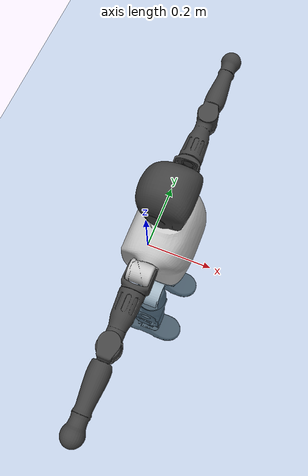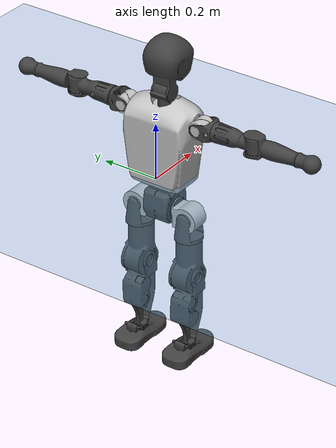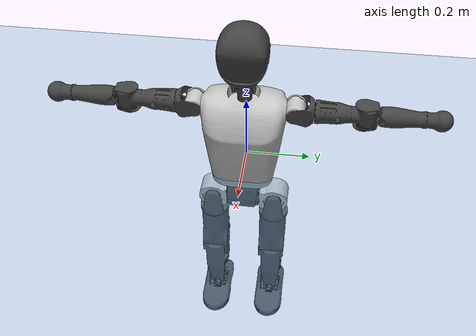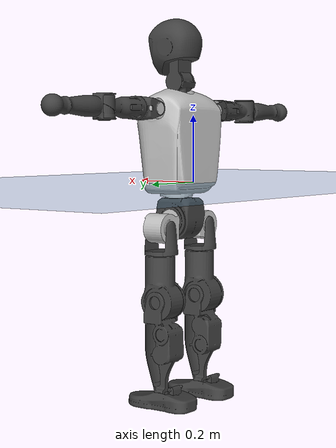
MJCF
<mujoco model="T1">
  <compiler angle="radian" assetdir="assets" balanceinertia="true" inertiafromgeom="false"/>

  <option timestep="0.005" density="1.2" viscosity="2e-05"/>

  <size nkey="1"/>

  <visual>
    <quality shadowsize="8192"/>
    <map shadowclip="0.5"/>
  </visual>

  <default>
    <default class="/">
      <joint armature="0.01" damping="0.01" frictionloss="0.1"/>
      <geom contype="0" conaffinity="0" group="1" solref="-1000 -80"/>
      <site size="0.01 0.005 0.005" group="5"/>
      <general forcelimited="true" biastype="affine" gainprm="25" biasprm="0 -25 -0.6"/>
      <default class="t1">
        <geom rgba="0.25 0.25 0.25 1"/>
        <default class="visual">
          <geom type="mesh" group="2"/>
        </default>
        <default class="collision">
          <geom group="3"/>
        </default>
        <default class="foot">
          <geom size="0.1115 0.05 0.015" type="box" condim="6" group="4" priority="1" solimp="0.015 1 0.015"/>
        </default>
        <default class="reward_collision_sphere">
          <geom group="5" rgba="1 0 0 1"/>
        </default>
      </default>
    </default>
  </default>

  <asset>
    <texture type="skybox" colorspace="auto" name="//unnamed_texture_0" builtin="gradient" rgb1="0.95 0.95 0.95" rgb2="0.95 0.95 0.95" width="100" height="600"/>
    <texture type="2d" colorspace="auto" name="texplane" builtin="checker" rgb1="0.345 0.575 0.748" rgb2="0.345 0.575 0.748" markrgb="1 1 1" width="512" height="512"/>
    <material name="MatPlane" class="/" texture="texplane" texuniform="true" texrepeat="2 2" specular="0.9"/>
    <mesh name="Trunk" class="/" file="Trunk.stl"/>
    <mesh name="H1" class="/" file="H1.stl"/>
    <mesh name="H2" class="/" file="H2.stl"/>
    <mesh name="AL1" class="/" file="AL1.stl"/>
    <mesh name="AL2" class="/" file="AL2.stl"/>
    <mesh name="AL3" class="/" file="AL3.stl"/>
    <mesh name="left_hand_link" class="/" file="left_hand_link.stl"/>
    <mesh name="AR1" class="/" file="AR1.stl"/>
    <mesh name="AR2" class="/" file="AR2.stl"/>
    <mesh name="AR3" class="/" file="AR3.stl"/>
    <mesh name="right_hand_link" class="/" file="right_hand_link.stl"/>
    <mesh name="Waist" class="/" file="Waist.stl"/>
    <mesh name="Hip_Pitch_Left" class="/" file="Hip_Pitch_Left.stl"/>
    <mesh name="Hip_Roll_Left" class="/" file="Hip_Roll_Left.stl"/>
    <mesh name="Hip_Yaw_Left" class="/" file="Hip_Yaw_Left.stl"/>
    <mesh name="Shank_Left" class="/" file="Shank_Left.stl"/>
    <mesh name="Ankle_Cross_Left" class="/" file="Ankle_Cross_Left.stl"/>
    <mesh name="left_foot_link" class="/" file="left_foot_link.stl"/>
    <mesh name="Hip_Pitch_Right" class="/" file="Hip_Pitch_Right.stl"/>
    <mesh name="Hip_Roll_Right" class="/" file="Hip_Roll_Right.stl"/>
    <mesh name="Hip_Yaw_Right" class="/" file="Hip_Yaw_Right.stl"/>
    <mesh name="Shank_Right" class="/" file="Shank_Right.stl"/>
    <mesh name="Ankle_Cross_Right" class="/" file="Ankle_Cross_Right.stl"/>
    <mesh name="right_foot_link" class="/" file="right_foot_link.stl"/>
  </asset>

  <worldbody>
    <geom name="floor" class="/" size="100 100 0.125" type="plane" group="0" material="MatPlane"/>
    <light name="toplight_shadow" class="/" pos="0 0 5" dir="0.0990148 0.0990148 -0.990148" type="directional" ambient="0.04 0.04 0.04" diffuse="0.55 0.55 0.55" specular="0.12 0.12 0.12"/>
    <light name="toplight_fill" class="/" pos="0 0 5" dir="0.0990148 0.0990148 -0.990148" type="directional" castshadow="false" ambient="0.04 0.04 0.04" diffuse="0.3 0.3 0.3" specular="0.08 0.08 0.08"/>
    <body name="trunk" childclass="t1" pos="-1.51298e-05 0.000432464 -0.000226728" quat="1 -8.76079e-06 1.7324e-05 -1.82914e-05">
      <inertial pos="0.0427071 -0.000308437 0.104579" quat="0.999927 0.00132592 -0.0116762 0.00296687" mass="8.87987" diaginertia="0.0286888 0.0582137 0.0541163"/>
      <joint name="//unnamed_joint_0" type="free" armature="0" damping="0" frictionloss="0"/>
      <geom name="//unnamed_geom_1" class="visual" rgba="0.76 0.76 0.76 1" mesh="Trunk"/>
      <geom name="//unnamed_geom_2" class="collision" size="0.0682032 0.0909376 0.136406" pos="0.0475556 0 0.119231" type="box"/>
      <geom name="//unnamed_geom_3" class="reward_collision_sphere" size="0.104578" pos="0.0475556 0 0.0993591"/>
      <geom name="//unnamed_geom_4" class="reward_collision_sphere" size="0.0136406" pos="0.0475556 0.0800653 0"/>
      <geom name="//unnamed_geom_5" class="reward_collision_sphere" size="0.0136406" pos="0.0475556 -0.0800653 0"/>
      <geom name="//unnamed_geom_6" class="reward_collision_sphere" size="0.0136406" pos="0.0475556 0.100788 0.178846"/>
      <geom name="//unnamed_geom_7" class="reward_collision_sphere" size="0.0136406" pos="0.0475556 -0.100788 0.178846"/>
      <site name="imu" pos="-1.75235e-05 0.00229009 0.00404734" size="0.00909376"/>
      <camera name="track" pos="0 -1.88389 0" quat="0.707107 0.707107 0 0" mode="trackcom"/>
      <camera name="ego_camera" pos="0.0966963 0 0.417308" quat="-0.5 -0.5 0.5 0.5"/>
      <body name="H1" pos="0.0488953 0.000619555 0.241654" quat="1 6.82397e-05 7.23036e-05 6.14862e-05">
        <inertial pos="-0.000802034 -0.00200563 0.0562439" quat="0.762748 -0.0145325 0.00156894 0.64653" mass="0.331417" diaginertia="7.65604e-05 0.000164019 0.000145867"/>
        <joint name="AAHead_yaw" pos="0 0 0" axis="-0.00173578 -0.00339497 0.999993" stiffness="0.000324941" range="-1.5876 1.59512" armature="0.00918211" damping="0.00952524" frictionloss="0.0943692"/>
        <geom name="//unnamed_geom_8" class="visual" mesh="H1"/>
        <body name="H2" pos="-0.000375164 -0.000392666 0.0595768" quat="1 -0.000102265 9.07368e-05 -0.000746576">
          <inertial pos="0.00641039 -3.01356e-05 0.0976545" quat="0.98805 0.106211 -0.0760305 -0.0818291" mass="0.474063" diaginertia="0.000638034 0.00144736 0.00164044"/>
          <joint name="Head_pitch" pos="0 0 0" axis="0.00150799 -0.999998 0.00095558" range="-1.21705 0.347339" armature="0.00895312" damping="0.00728086" frictionloss="0.0895938"/>
          <geom name="//unnamed_geom_9" class="visual" mesh="H2"/>
          <geom name="//unnamed_geom_10" class="collision" size="0.0727501" pos="0.00792593 0 0.109295"/>
          <geom name="//unnamed_geom_11" class="reward_collision_sphere" size="0.0818438" pos="0.0158519 0 0.0993591"/>
        </body>
      </body>
      <body name="AL1" pos="0.0467146 0.0998739 0.218339" quat="1 5.82756e-05 0.000458963 -2.44584e-05">
        <inertial pos="-0.000991362 0.0429084 3.04369e-05" quat="0.50182 0.497529 -0.50325 0.497374" mass="0.400486" diaginertia="0.000434585 0.000962135 0.000285565"/>
        <joint name="Left_Shoulder_Pitch" pos="0 0 0" axis="0.00217914 0.999996 -0.00172606" range="-3.28694 1.22184" armature="0.00937376" damping="0.0121941" frictionloss="0.0951447"/>
        <geom name="//unnamed_geom_12" class="visual" rgba="0.76 0.76 0.76 1" mesh="AL1"/>
        <body name="AL2" pos="0.000887369 0.0441237 -0.000166411" quat="1 -0.000290117 8.41729e-05 0.000210453">
          <inertial pos="0.0044065 0.0346907 -0.000239488" quat="0.486357 0.510719 -0.486446 0.515746" mass="0.119893" diaginertia="0.000124732 0.000253695 0.000170765"/>
          <joint name="Left_Shoulder_Roll" pos="0 0 0" axis="-0.999999 0.00014252 0.00119883" stiffness="0.00227584" range="-1.57444 1.73454" armature="0.00876945" damping="0.00371789" frictionloss="0.0888666"/>
          <geom name="//unnamed_geom_13" class="visual" mesh="AL2"/>
          <body name="AL3" pos="0.00169519 0.0581532 0.00111528" quat="1 -0.000227996 0.000111721 0.000172725">
            <inertial pos="0.00045363 0.0808059 -0.00113146" quat="0.704853 0.709317 0.00284245 -0.00655561" mass="0.781713" diaginertia="0.00410921 0.00985785 0.000611253"/>
            <joint name="Left_Elbow_Pitch" pos="0 0 0" axis="-0.00036929 -0.999999 0.00105" range="-2.27016 2.2942" armature="0.00911662" damping="0.0102829" frictionloss="0.0968192"/>
            <geom name="//unnamed_geom_14" class="visual" mesh="AL3"/>
            <geom name="//unnamed_geom_15" class="collision" size="0.0272813 0.0682032" pos="0 0.0470972 0" quat="0.707105 0.707108 0 0" type="cylinder"/>
            <geom name="//unnamed_geom_16" class="reward_collision_sphere" size="0.0327375"/>
            <body name="left_hand_link" pos="0.00147769 0.138076 0.00145985" quat="1 -0.000325709 -9.95633e-05 0.000445422">
              <inertial pos="-0.00077624 0.102894 0.000182719" quat="0.708124 0.706088 -0.000218081 -0.000767199" mass="0.249262" diaginertia="0.00258798 0.00602483 0.000207375"/>
              <joint name="Left_Elbow_Yaw" pos="0 0 0" axis="0.00145642 -0.0041699 0.99999" range="-2.4261 0.0279696" armature="0.00904736" damping="0.00676012" frictionloss="0.0865652"/>
              <geom name="//unnamed_geom_17" class="visual" mesh="left_hand_link"/>
              <geom name="//unnamed_geom_18" class="collision" size="0.0272813 0.0795704" pos="0 0.122453 0" quat="0.707105 0.707108 0 0" type="cylinder"/>
              <geom name="//unnamed_geom_19" class="reward_collision_sphere" size="0.0454688"/>
              <geom name="//unnamed_geom_20" class="reward_collision_sphere" size="0.0318282" pos="0 0.103614 0"/>
              <geom name="//unnamed_geom_21" class="reward_collision_sphere" size="0.0318282" pos="0 0.202518 0"/>
            </body>
          </body>
        </body>
      </body>
      <body name="AR1" pos="0.0450579 -0.0984217 0.216557" quat="1 9.99671e-05 0.000594707 -2.77504e-05">
        <inertial pos="-0.000671887 -0.0431022 -0.000436869" quat="0.503472 0.495781 -0.504651 0.49603" mass="0.393797" diaginertia="0.000429105 0.000970226 0.000284501"/>
        <joint name="Right_Shoulder_Pitch" pos="0 0 0" axis="-0.00715687 -0.999954 0.00640749" range="-1.22721 3.32635" armature="0.00891084" damping="0.00219125" frictionloss="0.0860752"/>
        <geom name="//unnamed_geom_22" class="visual" rgba="0.76 0.76 0.76 1" mesh="AR1"/>
        <body name="AR2" pos="0.000691472 -0.0434652 9.40784e-05" quat="1 5.27542e-06 -6.92609e-05 -0.000101387">
          <inertial pos="0.00277574 -0.0356089 0.00102376" quat="0.513603 0.488071 -0.510208 0.487531" mass="0.123075" diaginertia="0.000126471 0.000262049 0.000173199"/>
          <joint name="Right_Shoulder_Roll" pos="0 0 0" axis="-0.999946 -0.00982001 0.00349959" range="-1.73766 1.56535" armature="0.00886227" damping="0.00644265" frictionloss="0.0912578"/>
          <geom name="//unnamed_geom_23" class="visual" mesh="AR2"/>
          <body name="AR3" pos="-0.000850155 -0.0571577 0.000714058" quat="1 -0.000123656 -0.000108962 0.000422007">
            <inertial pos="-0.000537219 -0.0806204 -0.000133419" quat="0.709884 0.70431 -0.00138607 0.00315557" mass="0.782085" diaginertia="0.00410899 0.00970473 0.00061267"/>
            <joint name="Right_Elbow_Pitch" pos="0 0 0" axis="0.000318501 1 0.000584598" range="-2.2684 2.26179" armature="0.00917558" damping="0.00894516" frictionloss="0.0905724"/>
            <geom name="//unnamed_geom_24" class="visual" mesh="AR3"/>
            <geom name="//unnamed_geom_25" class="collision" size="0.0272813 0.0682032" pos="0 -0.0470972 0" quat="0.707105 0.707108 0 0" type="cylinder"/>
            <geom name="//unnamed_geom_26" class="reward_collision_sphere" size="0.0327375"/>
            <body name="right_hand_link" pos="-4.61366e-05 -0.138709 -0.000373702" quat="1 1.31136e-05 -3.99225e-05 5.34519e-05">
              <inertial pos="-0.00068688 -0.103314 -8.56542e-05" quat="0.708388 0.705819 0.00222131 -0.000747914" mass="0.244291" diaginertia="0.00259158 0.00604563 0.000209626"/>
              <joint name="Right_Elbow_Yaw" pos="0 0 0" axis="0.000557897 0.000133083 1" range="-0.0149175 2.44571" armature="0.00888528" damping="0.00787944" frictionloss="0.0899344"/>
              <geom name="//unnamed_geom_27" class="visual" mesh="right_hand_link"/>
              <geom name="//unnamed_geom_28" class="collision" size="0.0272813 0.0795704" pos="0 -0.122453 0" quat="0.707105 0.707108 0 0" type="cylinder"/>
              <geom name="//unnamed_geom_29" class="reward_collision_sphere" size="0.0454688"/>
              <geom name="//unnamed_geom_30" class="reward_collision_sphere" size="0.0318282" pos="0 -0.103614 0"/>
              <geom name="//unnamed_geom_31" class="reward_collision_sphere" size="0.0318282" pos="0 -0.202518 0"/>
            </body>
          </body>
        </body>
      </body>
      <body name="Waist" pos="0.0482959 -0.00124805 -0.11428" quat="1 -6.37943e-05 3.24233e-05 -2.97579e-05">
        <inertial pos="0.00214408 -0.00060993 0.00784303" quat="0.983672 0.000391018 -0.179951 0.00260826" mass="1.89686" diaginertia="0.00163617 0.0038504 0.00453943"/>
        <joint name="Waist" pos="0 0 0" axis="0.0014187 0.00277058 0.999995" range="-1.56508 1.57356" armature="0.00894097" damping="0.0102361" frictionloss="0.0864947"/>
        <geom name="//unnamed_geom_32" class="visual" mesh="Waist"/>
        <body name="Hip_Pitch_Left" pos="-0.000672751 0.0990529 0.000168111" quat="1 0.000187755 -0.000263522 8.35342e-05">
          <inertial pos="0.000458318 -0.00684525 -0.0179094" quat="0.975487 0.219692 0.0115392 0.0051732" mass="0.76808" diaginertia="0.000569332 0.00111254 0.00124271"/>
          <joint name="Left_Hip_Pitch" pos="0 0 0" axis="-0.00477334 0.999988 -0.000937912" range="-1.81146 1.56517" armature="0.00930286" damping="0.0110347" frictionloss="0.0875066"/>
          <geom name="//unnamed_geom_33" class="visual" rgba="0.76 0.76 0.76 1" mesh="Hip_Pitch_Left"/>
          <body name="Hip_Roll_Left" pos="0.0012192 -0.000803215 -0.0210007" quat="1 -0.000721241 0.000517182 7.30611e-05">
            <inertial pos="0.000495936 -1.59812e-05 -0.053403" quat="0.70506 -0.0123979 -0.0050857 0.709021" mass="0.290563" diaginertia="0.000546374 0.00113834 0.000503712"/>
            <joint name="Left_Hip_Roll" pos="0 0 0" axis="-0.999983 0.00554495 0.00180509" range="-1.56178 0.218192" armature="0.00935932" damping="0.0122593" frictionloss="0.0903889"/>
            <geom name="//unnamed_geom_34" class="visual" mesh="Hip_Roll_Left"/>
            <geom name="//unnamed_geom_35" class="reward_collision_sphere" size="0.0500157"/>
            <body name="Hip_Yaw_Left" pos="0.00226612 -0.000852686 -0.0815539" quat="1 0.000507576 -0.000402754 -7.02625e-05">
              <inertial pos="-0.00491289 -0.00080633 -0.0878668" quat="0.697466 -0.0362422 -0.0319238 0.714988" mass="1.62979" diaginertia="0.00809651 0.0187546 0.00250132"/>
              <joint name="Left_Hip_Yaw" pos="0 0 0" axis="0.00457776 -0.00528253 -0.999976" range="-1.00155 0.98705" armature="0.00934193" damping="0.00886891" frictionloss="0.0865798"/>
              <geom name="//unnamed_geom_36" class="visual" mesh="Hip_Yaw_Left"/>
              <geom name="//unnamed_geom_37" class="collision" size="0.0454688 0.0727501" type="cylinder"/>
              <body name="Shank_Left" pos="-0.0117275 -0.000458149 -0.134772" quat="1 -1.70244e-05 1.5303e-05 -4.60032e-05">
                <inertial pos="-0.0044629 7.41758e-05 -0.12353" quat="0.997684 0.0018529 -0.0239719 0.0636293" mass="1.31913" diaginertia="0.0109284 0.0258703 0.00181156"/>
                <joint name="Left_Knee_Pitch" pos="0 0 0" axis="0.00133719 0.999999 0.000256165" range="-0.0197151 2.32248" armature="0.00900437" damping="0.0102549" frictionloss="0.0927859"/>
                <geom name="//unnamed_geom_38" class="visual" mesh="Shank_Left"/>
                <geom name="//unnamed_geom_39" class="collision" size="0.0454688 0.0682032" pos="0 0 -0.119231" type="cylinder"/>
                <geom name="//unnamed_geom_40" class="reward_collision_sphere" size="0.0591094"/>
                <body name="Ankle_Cross_Left" pos="-0.000601002 -1.93318e-05 -0.27745" quat="1 2.20407e-06 -0.000312751 0.000261496">
                  <inertial pos="-0.00315451 -4.50165e-05 -0.00699628" quat="0.443432 0.551222 0.551285 0.442274" mass="0.0557385" diaginertia="9.02589e-06 1.93677e-05 1.10666e-05"/>
                  <joint name="Left_Ankle_Pitch" pos="0 0 0" axis="3.26704e-05 0.999988 0.00486909" range="-0.86083 0.339223" armature="0.00900103" damping="0.00401861" frictionloss="0.0929769"/>
                  <geom name="//unnamed_geom_41" class="visual" mesh="Ankle_Cross_Left"/>
                  <body name="left_foot_link" pos="-0.000809248 -0.000749274 -0.0119779" quat="1 1.54054e-06 -4.41965e-05 -0.000144359">
                    <inertial pos="-0.000569023 0.000190819 -0.00881844" quat="0.000342798 0.620274 -0.00364095 0.784376" mass="0.508559" diaginertia="0.000858676 0.00174356 0.00208753"/>
                    <joint name="Left_Ankle_Roll" pos="0 0 0" axis="-1 0.000150322 -0.000845965" range="-0.428834 0.460375" armature="0.00967368" damping="0.0095329" frictionloss="0.0882613"/>
                    <geom name="//unnamed_geom_42" class="visual" mesh="left_foot_link"/>
                    <geom name="left_foot" class="foot" size="0.103698 0.0437032 0.0140527" pos="0.00792593 0 -0.0149039"/>
                    <geom name="//unnamed_geom_44" class="reward_collision_sphere" size="0.0472875" pos="0.00792593 0 -0.0149039"/>
                    <geom name="//unnamed_geom_45" class="reward_collision_sphere" size="0.0272813" pos="0.0752963 -0.0216647 -0.0149039"/>
                    <geom name="//unnamed_geom_46" class="reward_collision_sphere" size="0.0272813" pos="-0.0554815 -0.0216647 -0.0149039"/>
                    <site name="left_foot" class="foot" pos="0.00792593 0 -0.0149039" size="0.00909376"/>
                  </body>
                </body>
              </body>
            </body>
          </body>
        </body>
        <body name="Hip_Pitch_Right" pos="-0.000424182 -0.0989558 -6.91504e-05" quat="1 0.000160547 0.000427746 0.000149705">
          <inertial pos="-0.000119775 0.0076252 -0.0177268" quat="0.972419 -0.232753 0.0147581 -0.0029979" mass="0.785111" diaginertia="0.000570758 0.00109828 0.00122507"/>
          <joint name="Right_Hip_Pitch" pos="0 0 0" axis="0.00249498 -0.999996 0.00158396" range="-1.56754 1.81681" armature="0.00988395" damping="0.00554001" frictionloss="0.0953257"/>
          <geom name="//unnamed_geom_47" class="visual" rgba="0.76 0.76 0.76 1" mesh="Hip_Pitch_Right"/>
          <body name="Hip_Roll_Right" pos="0.000422584 0.000774299 -0.0191565" quat="1 -6.99393e-05 0.00010605 -0.000487268">
            <inertial pos="0.000789917 -0.00140665 -0.0529764" quat="0.706934 -0.00790358 -0.00345676 0.707227" mass="0.285256" diaginertia="0.000537303 0.00109759 0.000487671"/>
            <joint name="Right_Hip_Roll" pos="0 0 0" axis="-0.999995 0.00203153 0.00230959" range="-0.206106 1.57089" armature="0.00903926" damping="0.00600123" frictionloss="0.0916698"/>
            <geom name="//unnamed_geom_48" class="visual" mesh="Hip_Roll_Right"/>
            <geom name="//unnamed_geom_49" class="reward_collision_sphere" size="0.0500157"/>
            <body name="Hip_Yaw_Right" pos="0.000341203 0.000136327 -0.0822403" quat="1 -9.92378e-05 -0.000115249 4.69907e-05">
              <inertial pos="-0.00551514 -0.00197925 -0.08977" quat="0.712252 -0.0321851 -0.0330026 0.700408" mass="1.58097" diaginertia="0.00787526 0.0183715 0.00246421"/>
              <joint name="Right_Hip_Yaw" pos="0 0 0" axis="0.000148546 -3.15009e-05 -1" stiffness="0.000557769" range="-0.985962 1.00634" armature="0.00892865" damping="0.00620858" frictionloss="0.0912584"/>
              <geom name="//unnamed_geom_50" class="visual" mesh="Hip_Yaw_Right"/>
              <geom name="//unnamed_geom_51" class="collision" size="0.0454688 0.0727501" type="cylinder"/>
              <body name="Shank_Right" pos="-0.0103007 -0.00127567 -0.134245" quat="1 0.000339034 -1.8074e-05 -8.30782e-05">
                <inertial pos="-0.00530124 -0.000637226 -0.120851" quat="0.999261 0.000434555 -0.0223196 -0.0312773" mass="1.3505" diaginertia="0.0107624 0.0261337 0.00190443"/>
                <joint name="Right_Knee_Pitch" pos="0 0 0" axis="-0.00503266 -0.999984 0.00259649" range="-2.36079 -0.0181302" armature="0.0091138" damping="0.00665193" frictionloss="0.0895689"/>
                <geom name="//unnamed_geom_52" class="visual" mesh="Shank_Right"/>
                <geom name="//unnamed_geom_53" class="collision" size="0.0454688 0.0682032" pos="0 0 -0.119231" type="cylinder"/>
                <geom name="//unnamed_geom_54" class="reward_collision_sphere" size="0.0591094"/>
                <body name="Ankle_Cross_Right" pos="0.00071104 -0.000713544 -0.277555" quat="1 9.28926e-06 1.59159e-05 -3.90283e-05">
                  <inertial pos="-0.00291064 0.000361967 -0.00891372" quat="0.447974 0.548933 0.550226 0.441863" mass="0.054686" diaginertia="8.84241e-06 1.88745e-05 1.07524e-05"/>
                  <joint name="Right_Ankle_Pitch" pos="0 0 0" axis="0.00240983 -0.999997 -0.000627326" range="-0.360096 0.855191" armature="0.0090391" damping="0.0073113" frictionloss="0.0909939"/>
                  <geom name="//unnamed_geom_55" class="visual" mesh="Ankle_Cross_Right"/>
                  <body name="right_foot_link" pos="0.000540278 -0.000975245 -0.0118571" quat="1 -0.000152581 0.000152477 -0.000326024">
                    <inertial pos="-0.00160008 0.000328041 -0.00918591" quat="0.00094984 0.622241 0.00108228 0.782825" mass="0.512173" diaginertia="0.000842689 0.00176639 0.00213055"/>
                    <joint name="Right_Ankle_Roll" pos="0 0 0" axis="-1 -0.000712449 1.39425e-05" range="-0.445675 0.44048" armature="0.00864821" damping="0.0151088" frictionloss="0.0894896"/>
                    <geom name="//unnamed_geom_56" class="visual" mesh="right_foot_link"/>
                    <geom name="right_foot" class="foot" size="0.0978216 0.0454106 0.0140005" pos="0.00792593 0 -0.0149039"/>
                    <geom name="//unnamed_geom_58" class="reward_collision_sphere" size="0.036375"/>
                    <geom name="//unnamed_geom_59" class="reward_collision_sphere" size="0.0272813" pos="0.00792593 0 -0.0149039"/>
                    <geom name="//unnamed_geom_60" class="reward_collision_sphere" size="0.0272813" pos="0.0752963 0.0216647 -0.0149039"/>
                    <geom name="//unnamed_geom_61" class="reward_collision_sphere" size="0.0272813" pos="-0.0554815 0.0216647 -0.0149039"/>
                    <site name="right_foot" class="foot" pos="0.00792593 0 -0.0149039" size="0.00909376"/>
                  </body>
                </body>
              </body>
            </body>
          </body>
        </body>
      </body>
    </body>
  </worldbody>

  <contact>
    <pair class="/" geom1="floor" geom2="left_foot" name="//unnamed_contact_0"/>
    <pair class="/" geom1="floor" geom2="right_foot" name="//unnamed_contact_1"/>
  </contact>

  <actuator>
    <general name="AAHead_yaw" class="/" joint="AAHead_yaw" forcerange="-6.24009 6.24009" gainprm="22.7469" biasprm="0 -22.7469 -0.545619"/>
    <general name="Head_pitch" class="/" joint="Head_pitch" forcerange="-6.27403 6.27403" gainprm="22.7469" biasprm="0 -22.7469 -0.545619"/>
    <general name="Left_Shoulder_Pitch" class="/" joint="Left_Shoulder_Pitch" forcerange="-16.8014 16.8014" gainprm="22.7469" biasprm="0 -22.7469 -0.545619"/>
    <general name="Left_Shoulder_Roll" class="/" joint="Left_Shoulder_Roll" forcerange="-16.5185 16.5185" gainprm="22.7469" biasprm="0 -22.7469 -0.545619"/>
    <general name="Left_Elbow_Pitch" class="/" joint="Left_Elbow_Pitch" forcerange="-16.9362 16.9362" gainprm="22.7469" biasprm="0 -22.7469 -0.545619"/>
    <general name="Left_Elbow_Yaw" class="/" joint="Left_Elbow_Yaw" forcerange="-16.9083 16.9083" gainprm="22.7469" biasprm="0 -22.7469 -0.545619"/>
    <general name="Right_Shoulder_Pitch" class="/" joint="Right_Shoulder_Pitch" forcerange="-15.7764 15.7764" gainprm="22.7469" biasprm="0 -22.7469 -0.545619"/>
    <general name="Right_Shoulder_Roll" class="/" joint="Right_Shoulder_Roll" forcerange="-16.5915 16.5915" gainprm="22.7469" biasprm="0 -22.7469 -0.545619"/>
    <general name="Right_Elbow_Pitch" class="/" joint="Right_Elbow_Pitch" forcerange="-16.9933 16.9933" gainprm="22.7469" biasprm="0 -22.7469 -0.545619"/>
    <general name="Right_Elbow_Yaw" class="/" joint="Right_Elbow_Yaw" forcerange="-15.8083 15.8083" gainprm="22.7469" biasprm="0 -22.7469 -0.545619"/>
    <general name="Waist" class="/" joint="Waist" forcerange="-27.0023 27.0023" gainprm="22.7469" biasprm="0 -22.7469 -0.545619"/>
    <general name="Left_Hip_Pitch" class="/" joint="Left_Hip_Pitch" forcerange="-41.6697 41.6697" gainprm="22.7469" biasprm="0 -22.7469 -0.545619"/>
    <general name="Left_Hip_Roll" class="/" joint="Left_Hip_Roll" forcerange="-27.8854 27.8854" gainprm="22.7469" biasprm="0 -22.7469 -0.545619"/>
    <general name="Left_Hip_Yaw" class="/" joint="Left_Hip_Yaw" forcerange="-25.8437 25.8437" gainprm="22.7469" biasprm="0 -22.7469 -0.545619"/>
    <general name="Left_Knee_Pitch" class="/" joint="Left_Knee_Pitch" forcerange="-53.7299 53.7299" gainprm="22.7469" biasprm="0 -22.7469 -0.545619"/>
    <general name="Left_Ankle_Pitch" class="/" joint="Left_Ankle_Pitch" forcerange="-16.9916 16.9916" gainprm="22.7469" biasprm="0 -22.7469 -0.545619"/>
    <general name="Left_Ankle_Roll" class="/" joint="Left_Ankle_Roll" forcerange="-13.675 13.675" gainprm="22.7469" biasprm="0 -22.7469 -0.545619"/>
    <general name="Right_Hip_Pitch" class="/" joint="Right_Hip_Pitch" forcerange="-40.8563 40.8563" gainprm="22.7469" biasprm="0 -22.7469 -0.545619"/>
    <general name="Right_Hip_Roll" class="/" joint="Right_Hip_Roll" forcerange="-28.1787 28.1787" gainprm="22.7469" biasprm="0 -22.7469 -0.545619"/>
    <general name="Right_Hip_Yaw" class="/" joint="Right_Hip_Yaw" forcerange="-28.2726 28.2726" gainprm="22.7469" biasprm="0 -22.7469 -0.545619"/>
    <general name="Right_Knee_Pitch" class="/" joint="Right_Knee_Pitch" forcerange="-55.0332 55.0332" gainprm="22.7469" biasprm="0 -22.7469 -0.545619"/>
    <general name="Right_Ankle_Pitch" class="/" joint="Right_Ankle_Pitch" forcerange="-17.627 17.627" gainprm="22.7469" biasprm="0 -22.7469 -0.545619"/>
    <general name="Right_Ankle_Roll" class="/" joint="Right_Ankle_Roll" forcerange="-13.1586 13.1586" gainprm="22.7469" biasprm="0 -22.7469 -0.545619"/>
  </actuator>

  <sensor>
    <gyro site="imu" name="imu_angular_velocity"/>
    <velocimeter site="imu" name="imu_linear_velocity"/>
    <framelinvel objtype="site" objname="left_foot" name="left_foot_global_linear_velocity"/>
    <framelinvel objtype="site" objname="right_foot" name="right_foot_global_linear_velocity"/>
  </sensor>

  <keyframe>
    <key name="home" qpos="0 0 0.6385 1 0 0 0 0 0 0 1.4 0 -0.4 0 -1.4 0 0.4 0 -0.4 0 0 0.8 -0.4 0 0.4 0 0 -0.8 0.4 0"/>
  </keyframe>
</mujoco>
